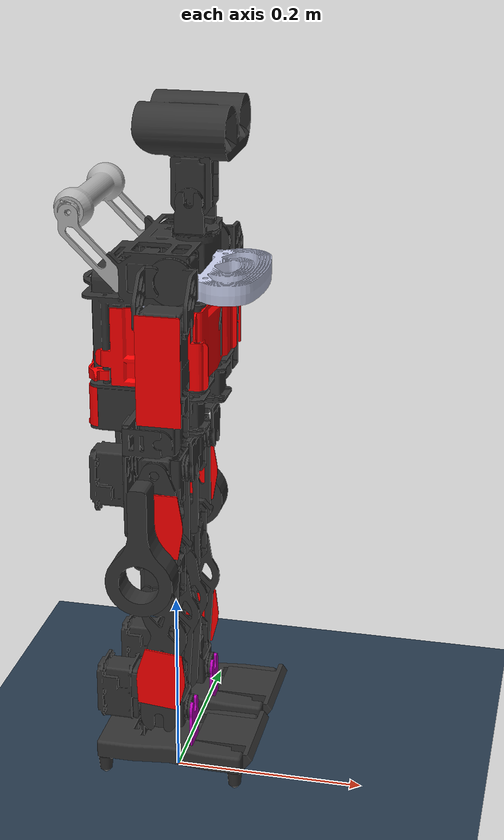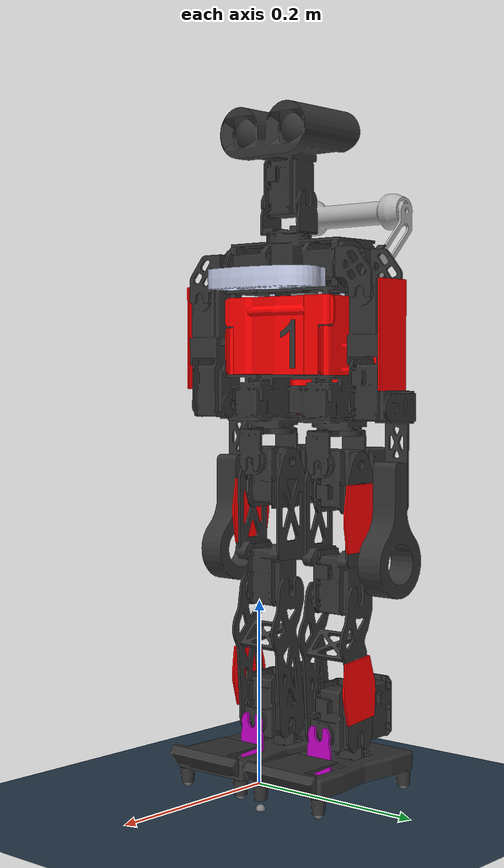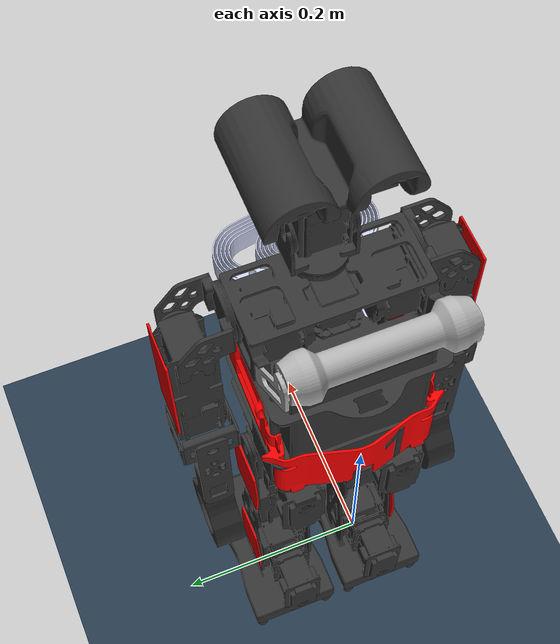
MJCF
<mujoco model="SAHR_v76">

    <compiler angle="radian" meshdir="../meshes/" />
    <size njmax="500" nconmax="1000" />
    <asset>
        <mesh name="trunk_1" file="trunk_1.STL" />
        <mesh name="u_neck_1" file="u_neck_1.STL" />
        <mesh name="head_1" file="head_1.STL" />
        <mesh name="Head_Up" file="Head_Up.STL" />
        <mesh name="u_neck_bone_right" file="u_neck_bone_right.STL" />
        <mesh name="u_neck_bone_left" file="u_neck_bone_left.STL" />
        <mesh name="u_block_2" file="u_block_2.STL" />
        <mesh name="u_block_2_bone1" file="u_block_2_bone1.STL" />
        <mesh name="u_block_2_bone2" file="u_block_2_bone2.STL" />
        <mesh name="mx106_block_2" file="mx106_block_2.STL" />
        <mesh name="left_knee_1" file="left_knee_1.STL" />
        <mesh name="tibia_2" file="tibia_2.STL" />
        <mesh name="mx106_block_mir_2" file="mx106_block_mir_2.STL" />
        <mesh name="left_foot_1" file="left_foot_1.STL" />
        <mesh name="left_foot_1_0_foot_protection" file="left_foot_1_0_foot_protection.STL" />
        <mesh name="left_foot_cleat_front_right" file="left_foot_cleat_front_right.STL" />
        <mesh name="left_foot_cleat_front_left" file="left_foot_cleat_front_left.STL" />
        <mesh name="left_foot_cleat_back_right" file="left_foot_cleat_back_right.STL" />
        <mesh name="left_foot_cleat_back_left" file="left_foot_cleat_back_left.STL" />
        <mesh name="left_foot_bone_back" file="left_foot_bone_back.STL" />
        <mesh name="left_foot_bone_front" file="left_foot_bone_front.STL" />
        <mesh name="joint_block03" file="joint_block03.STL" />
        <mesh name="dubel03" file="dubel03.STL" />
        <mesh name="tibia_21" file="tibia_21.STL" />
        <mesh name="left_shin_panel" file="left_shin_panel.STL" />
        <mesh name="tibia_22" file="tibia_22.STL" />
        <mesh name="left_knee_bone_1" file="left_knee_bone_1.STL" />
        <mesh name="left_hip_panel" file="left_hip_panel.STL" />
        <mesh name="left_knee_bone_2" file="left_knee_bone_2.STL" />
        <mesh name="joint_block01" file="joint_block01.STL" />
        <mesh name="dubel01" file="dubel01.STL" />
        <mesh name="u_block_1" file="u_block_1.STL" />
        <mesh name="u_block_1_bone1" file="u_block_1_bone1.STL" />
        <mesh name="u_block_1_bone2" file="u_block_1_bone2.STL" />
        <mesh name="mx106_block_mir_1" file="mx106_block_mir_1.STL" />
        <mesh name="right_knee_1" file="right_knee_1.STL" />
        <mesh name="tibia_1" file="tibia_1.STL" />
        <mesh name="mx106_block_1" file="mx106_block_1.STL" />
        <mesh name="right_foot_1" file="right_foot_1.STL" />
        <mesh name="right_foot_cleat_front_left" file="right_foot_clear_front_left.STL" />
        <mesh name="right_foot_cleat_back_left" file="right_foot_cleat_back_left.STL" />
        <mesh name="right_foot_cleat_back_right" file="right_foot_cleat_back_right.STL" />
        <mesh name="right_foot_cleat_front_right" file="right_foot_cleat_front_right.STL" />
        <mesh name="right_foot_1_7_foot_protection" file="right_foot_1_7_foot_protection.STL" />
        <mesh name="right_foot_bone_back" file="right_foot_bone_back.STL" />
        <mesh name="right_foot_bone_front" file="right_foot_bone_front.STL" />
        <mesh name="joint_block04" file="joint_block04.STL" />
        <mesh name="dubel04" file="dubel04.STL" />
        <mesh name="tibia_11" file="tibia_11.STL" />
        <mesh name="right_shine_panel" file="right_shine_panel.STL" />
        <mesh name="tibia_12" file="tibia_12.STL" />
        <mesh name="right_knee_bone_1" file="right_knee_bone_1.STL" />
        <mesh name="right_hip_panel" file="right_hip_panel.STL" />
        <mesh name="right_knee_bone_2" file="right_knee_bone_2.STL" />
        <mesh name="joint_block02" file="joint_block02.STL" />
        <mesh name="dubel02" file="dubel02.STL" />
        <mesh name="u_shoulder_1" file="u_shoulder_1.STL" />
        <mesh name="left_humerus_1" file="left_humerus_1.STL" />
        <mesh name="left_radius_1" file="left_radius_1.STL" />
        <mesh name="left_radius_1_1_radius_plate" file="left_radius_1_1_radius_plate.STL" />
        <mesh name="left_boxing_glove" file="left_boxing_glove.STL" />
        <mesh name="left_radius_bone1" file="left_radius_bone1.STL" />
        <mesh name="left_radius_bone2" file="left_radius_bone2.STL" />
        <mesh name="left_humerus_panel" file="left_humerus_panel.STL" />
        <mesh name="u_shoulder_1_bone_front" file="u_shoulder_1_bone_front.STL" />
        <mesh name="u_shoulder_1_bone_back" file="u_shoulder_1_bone_back.STL" />
        <mesh name="u_shoulder_2" file="u_shoulder_2.STL" />
        <mesh name="right_humerus_1" file="right_humerus_1.STL" />
        <mesh name="right_radius_1" file="right_radius_1.STL" />
        <mesh name="right_radius_1_0_radius_plate" file="right_radius_1_0_radius_plate.STL" />
        <mesh name="right_boxing_glove" file="right_boxing_glove.STL" />
        <mesh name="right_radius_bone1" file="right_radius_bone1.STL" />
        <mesh name="right_radius_bone2" file="right_radius_bone2.STL" />
        <mesh name="right_humerus_panel" file="right_humerus_panel.STL" />
        <mesh name="u_shoulder_2_bone_front" file="u_shoulder_2_bone_front.STL" />
        <mesh name="u_shoulder_2_bone_back" file="u_shoulder_2_bone_back.STL" />
        <mesh name="Front_dempher" file="Front_dempher.STL" />
        <mesh name="Handle" file="Handle.STL" />
        <mesh name="DXL_Board" file="DXL_Board.STL" />
        <mesh name="cover_battery" file="cover_battery.STL" />
        <mesh name="front_panel" file="front_panel.STL" />
        <mesh name="left_panel" file="left_panel.STL" />
        <mesh name="right_panel" file="right_panel.STL" />
        <mesh name="num_01" file="num_01.STL" />
        <mesh name="number_01" file="number_01.STL" />
    </asset>

    <asset>
        <texture type="skybox" builtin="gradient" rgb1="0.3 0.5 0.7" rgb2="0 0 0" width="512" height="512"/>

        <texture name="texplane" type="2d" builtin="checker" rgb1=".2 .3 .4" rgb2=".1 0.15 0.2" width="512" height="512" mark="cross" markrgb=".8 .8 .8"/>

        <texture name="texgeom" type="cube" builtin="flat" mark="cross" width="127" height="1278"
            rgb1="0.8 0.6 0.4" rgb2="0.8 0.6 0.4" markrgb="1 1 1" random="0.01"/>

        <material name="matplane" reflectance="0.3" texture="texplane" texrepeat="1 1" texuniform="true"/>

        <material name="matgeom" texture="texgeom" texuniform="true" rgba="0.8 0.6 .4 1"/>
    </asset>

    <worldbody>
        <geom name="floor" pos="0 0 0" size="0 0 .25" type="plane" material="matplane" condim="3"/>

        <light directional="false" diffuse=".2 .2 .2" specular="0 0 0" pos="0 0 5" dir="0 0 -1" castshadow="false"/>
        <light mode="targetbodycom" target="trunk_1" directional="false" diffuse=".8 .8 .8" specular="0.3 0.3 0.3" pos="0 0 4.0" dir="0 0 -1"/>
        <camera name="back" pos="-1 0 1" xyaxes="0 -1 0 1 0 2" mode="trackcom"/>
        <camera name="side" pos="0 -1 1" xyaxes="1 0 0 0 1 2" mode="trackcom"/>
        <body name="base" pos="0 0 0.4">
            <body name="trunk_1" pos="0 0 0" quat="0.707 0 0 0.707">
                <freejoint name="root"/>
                <geom type="mesh" rgba="0.2 0.2 0.2 1" mesh="trunk_1" />
                <geom pos="0.0506584 -0.0242583 0.141" quat="7.81699e-07 0 0 1" type="mesh" rgba="0.79216 0.81961 0.93333 1" mesh="Front_dempher" />
                <geom pos="0.119659 0.0956219 0.215878" quat="0.706998 0.0123898 -0.706998 -0.0123898" type="mesh" rgba="0.698039 0.698039 0.698039 1" mesh="Handle" />
                <body name="dxl_board" pos="0.0506584 0.0131858 0.123" quat="0.5 -0.5 -0.5 0.5">
                    <geom type="mesh" rgba="0.79216 0.81961 0.93333 1" mesh="DXL_Board" />
                    <site name="dxl_board_accelerometer" pos="0 0 0" size=".01 .01 .01" type="box" />
                    <site name="dxl_board_gyro" pos="0 0 0" size=".01 .01 .01" type="box" />

                </body>
                <geom pos="-0.0143415 0.0637418 0" quat="5.52744e-07 5.52744e-07 0.707107 0.707107" type="mesh" rgba="1 0 0 1" mesh="cover_battery" />
                <geom pos="0.0506584 -0.0332583 0.0435" quat="7.81699e-07 0 0 1" type="mesh" rgba="1 0 0 1" mesh="front_panel" />
                <geom pos="0.114644 0.0177528 0.043" quat="0.0110329 0 0 0.999939" type="mesh" rgba="1 0 0 1" mesh="left_panel" />
                <geom pos="-0.0133262 0.0177312 0.043" quat="0.999943 0 0 0.0107024" type="mesh" rgba="1 0 0 1" mesh="right_panel" />
                <geom pos="0.0505128 -0.0332711 0.0497542" quat="0.706434 0.706434 0.030843 0.030843" type="mesh" rgba="0.2 0.2 0.2 1" mesh="num_01" />
                <geom pos="0.0393193 0.0941906 0.0028542" quat="0.098054 0.098054 -0.700275 -0.700275" type="mesh" rgba="0.2 0.2 0.2 1" mesh="number_01" />
                <body name="u_neck_1" pos="0.0506584 -0.0113378 0.184196">
                    <inertial pos="-1.33133e-10 -4.74719e-09 0.0119379" quat="0.5 0.5 0.5 0.5" mass="0.0278443" diaginertia="1.38353e-05 1.36173e-05 5.7683e-06" />

                    <geom type="mesh" rgba="0.2 0.2 0.2 1" mesh="u_neck_1" />
                    <geom pos="-0.0265 0.000100041 0.0352043" quat="0.5 0.5 0.5 -0.5" type="mesh" rgba="0.2 0.2 0.2 1" mesh="u_neck_bone_right" />
                    <geom pos="0.0235 9.99633e-05 0.0352043" quat="0.5 0.5 0.5 -0.5" type="mesh" rgba="0.2 0.2 0.2 1" mesh="u_neck_bone_left" />
                    <body name="head_1" pos="0 7.94737e-05 0.0357043" quat="0.5 -0.5 0.5 -0.5">
                        <inertial pos="0.00291592 -0.0507699 -5.97662e-05" quat="0.706849 0.706842 0.0187562 0.019667" mass="0.45205" diaginertia="0.000508663 0.000438253 0.000251688" />

                        <geom type="mesh" rgba="0.2 0.2 0.2 1" mesh="head_1" />
                        <geom pos="-0.0133327 -0.0476 -0.017" quat="0 0.707107 0 0.707106" type="mesh" rgba="0.2 0.2 0.2 1" mesh="Head_Up" />
                    </body>
                </body>
                <body name="u_block_2" pos="0.0970334 0.0146146 -0.0089" quat="0 0.706488 -0.707725 0">
                    <inertial pos="0.00599173 -1.00908e-05 0.0136137" quat="0.000505477 0.678064 -0.000806897 0.735002" mass="0.0269256" diaginertia="1.67297e-05 1.61336e-05 6.9952e-06" />

                    <joint name="left_hip_yaw" type="hinge" pos="0 0 0" axis="0 0 -1"  damping="0.5" stiffness="20" frictionloss="5"  limited="true" range = "-0.5 1.5"/>

                    <geom type="mesh" rgba="0.2 0.2 0.2 1" mesh="u_block_2" />
                    <geom pos="0.0329179 -5.7535e-05 0.037" quat="0.5 0.5 0.5 -0.5" type="mesh" rgba="0.2 0.2 0.2 1" mesh="u_block_2_bone1" />
                    <geom pos="-0.023385 4.08729e-05 0.037" quat="0.5 0.5 0.5 -0.5" type="mesh" rgba="0.2 0.2 0.2 1" mesh="u_block_2_bone2" />
                    <body name="mx106_block_2" pos="0 0 0.04" quat="0.5 -0.5 -0.5 0.5">
                        <inertial pos="5.15734e-05 -0.0158297 0.0220983" quat="1 0 0 0" mass="0.356029" diaginertia="0.000366976 0.000311782 0.000150052" />

                        <joint name="left_hip_roll" type="hinge" pos="0 0 0" axis="0 0 -1" damping="0.5" stiffness="20" frictionloss="5"  limited="true" range="-0.7 1.0"/>

                        <geom type="mesh" rgba="0.2 0.2 0.2 1" mesh="mx106_block_2" />
                        <geom pos="0 0 0.014722" quat="0.5 -0.5 0.5 -0.5" type="mesh" rgba="0.2 0.2 0.2 1" mesh="joint_block01" />
                        <geom pos="-1.36016e-08 0 0.023422" quat="1 -9.16352e-09 -7.81699e-07 7.45057e-09" type="mesh" rgba="0.2 0.2 0.2 1" mesh="dubel01" />
                        <body name="left_knee_1" pos="0 0 0" quat="0.707107 0 0.707107 0">
                            <inertial pos="-2.19976e-05 -0.108796 -0.000922573" quat="0.725498 0.688224 0 0" mass="0.229478" diaginertia="0.000327608 0.000293228 8.86064e-05" />

                            <joint name="left_hip_pitch" type="hinge" pos="0 0 0" axis="0 0 -1" damping="0.5" stiffness="20" frictionloss="5"  limited="true" range="-2.1 1.0"/>

                            <geom type="mesh" rgba="0.2 0.2 0.2 1" mesh="left_knee_1" />
                            <geom pos="-2.19531e-05 -0.055 -0.03" quat="0 0 1 0" type="mesh" rgba="0.2 0.2 0.2 1" mesh="left_knee_bone_1" />
                            <geom pos="-2.19531e-05 -0.055 -0.03" quat="0 0 1 0" type="mesh" rgba="1 0 0 1" mesh="left_hip_panel" />
                            <geom pos="-2.20407e-05 -0.128 0.026" quat="0.5 -0.5 -0.5 0.5" type="mesh" rgba="0.2 0.2 0.2 1" mesh="left_knee_bone_2" />
                            <body name="tibia_2" pos="-2.19547e-05 -0.141 -0.029" quat="0 1 0 0">
                                <inertial pos="0.00453397 0.0676196 -0.026272" quat="0.686939 0.726604 0.00837443 0.00951759" mass="0.0696482" diaginertia="0.000177805 0.000141467 5.69954e-05" />

                                <joint name="left_knee" type="hinge" pos="0 0 0" axis="0 0 1" damping="0.5" stiffness="20" frictionloss="5"  limited="true" range="0.0 1.7"/>

                                <geom type="mesh" rgba="0.2 0.2 0.2 1" mesh="tibia_2" />
                                <geom pos="-0.00141422 0.0350503 -0.003" quat="0 1 0 0" type="mesh" rgba="0.2 0.2 0.2 1" mesh="tibia_21" />
                                <geom pos="0.00350175 0.0920354 0.001" quat="-0.0494213 0 0 0.998778" type="mesh" rgba="1 0 0 1" mesh="left_shin_panel" />
                                <geom pos="0.0219202 0.0583848 -0.055" quat="0 0 0 1" type="mesh" rgba="0.2 0.2 0.2 1" mesh="tibia_22" />
                                <body name="mx106_block_mir_2" pos="0 0.14 0" quat="0 1 0 0">
                                    <inertial pos="-0.0220763 0.0158297 0.0290516" quat="0.00915433 0.705801 -0.0327047 0.707595" mass="0.356029" diaginertia="0.000366976 0.000311782 0.000150052" />

                                    <joint name="left_ankle_pitch" type="hinge" pos="0 0 0" axis="0 0 -1" damping="0.5" stiffness="20" frictionloss="5"  limited="true" range="-0.8 1.0"/>

                                    <geom type="mesh" rgba="0.2 0.2 0.2 1" mesh="mx106_block_mir_2" />
                                    <geom pos="0 0 0.00949997" quat="0.707107 0 0 0.707107" type="mesh" rgba="0.2 0.2 0.2 1" mesh="joint_block03" />
                                    <geom pos="0 0 0.00889992" quat="0 0.707107 0 0.707107" type="mesh" rgba="0.2 0.2 0.2 1" mesh="dubel03" />
                                    <body name="left_foot_1" pos="0.00827101 0 0.029" quat="7.45058e-09 0.707107 7.45058e-09 -0.707107">
                                        <inertial pos="0.00414743 0.0304994 -0.0352501" quat="0.695396 -0.0257124 0.026305 0.71768" mass="0.473901" diaginertia="0.00130021 0.00119674 0.000218674" />

                                        <geom type="mesh" rgba="0.2 0.2 0.2 1" mesh="left_foot_1" />
                                        <geom pos="0.0055 0.04 -0.0858033" quat="0.690665 0.723162 0.00340654 0.00263633" type="mesh" rgba="0.2 0.2 0.2 1" mesh="left_foot_1_0_foot_protection" />

                                        <geom pos="-0.0325 0.06 -0.0778033" quat="0 0 0 1" type="mesh" rgba="0.2 0.2 0.2 1" mesh="left_foot_cleat_front_right" />
                                        <site name="left_foot_cleat_front_right" pos="-0.0325 0.07 -0.0778033" quat="0 0 0 1" />

                                        <geom pos="0.0435 0.06 -0.0778033" quat="0 0 0 1" type="mesh" rgba="0.2 0.2 0.2 1" mesh="left_foot_cleat_front_left" />
                                        <site name="left_foot_cleat_front_left" pos="0.0435 0.06 -0.0778033" quat="0 0 0 1" />

                                        <geom pos="-0.0325 0.06 0.0638054" quat="0 1 0 0" type="mesh" rgba="0.2 0.2 0.2 1" mesh="left_foot_cleat_back_right" />
                                        <site name="left_foot_cleat_back_right" pos="-0.0325 0.06 0.0638054" quat="0 1 0 0" />

                                        <geom pos="0.0435 0.06 0.0638054" quat="0 1 0 0" type="mesh" rgba="0.2 0.2 0.2 1" mesh="left_foot_cleat_back_left" />
                                        <site name="left_foot_cleat_back_left" pos="0.0435 0.06 0.0638054" quat="0 1 0 0" />

                                        <geom pos="0 0 0.0328961" quat="0.5 -0.5 -0.5 0.5" type="mesh" rgba="0.2 0.2 0.2 1" mesh="left_foot_bone_back" />
                                        <geom pos="0 0 -0.0234439" quat="0.499999 -0.500001 -0.500001 0.499999" type="mesh" rgba="0.752941 0 0.752941 1" mesh="left_foot_bone_front" />
                                    </body>
                                </body>
                            </body>
                        </body>
                    </body>
                </body>
                <body name="u_block_1" pos="0.00428344 0.0146147 -0.0089" quat="0 0.707107 -0.707107 0">
                    <inertial pos="0.00599174 2.69365e-09 0.0136137" quat="0 0.678064 0 0.735003" mass="0.0269256" diaginertia="1.67297e-05 1.61336e-05 6.99521e-06" />

                    <joint name="right_hip_yaw" type="hinge" pos="0 0 0" axis="0 0 -1" damping="0.5" stiffness="20" frictionloss="5" limited="true" range = "-0.5 1.5"/>

                    <geom type="mesh" rgba="0.2 0.2 0.2 1" mesh="u_block_1" />
                    <geom pos="0.032918 0 0.037" quat="0.5 0.5 0.5 -0.5" type="mesh" rgba="0.2 0.2 0.2 1" mesh="u_block_1_bone1" />
                    <geom pos="-0.023385 0 0.037" quat="0.5 0.5 0.5 -0.5" type="mesh" rgba="0.2 0.2 0.2 1" mesh="u_block_1_bone2" />
                    <body name="mx106_block_mir_1" pos="0 0 0.04" quat="0.5 -0.5 0.5 -0.5">
                        <inertial pos="5.15746e-05 -0.0158297 -0.0220983" quat="0.999422 -0.0295988 0.00126868 0.0166526" mass="0.356029" diaginertia="0.000366976 0.000311782 0.000150052" />

                        <joint name="right_hip_roll" type="hinge" pos="0 0 0" axis="0 0 1" damping="0.5" stiffness="20" frictionloss="5"  limited ='true' range="-0.7 1.0"/>

                        <geom type="mesh" rgba="0.2 0.2 0.2 1" mesh="mx106_block_mir_1" />
                        <geom pos="-0.017 -0.0145 -0.016722" quat="0.5 0.5 -0.5 -0.5" type="mesh" rgba="0.2 0.2 0.2 1" mesh="joint_block02" />
                        <geom pos="-0.015 -0.015 -0.032422" type="mesh" rgba="0.2 0.2 0.2 1" mesh="dubel02" />
                        <body name="right_knee_1" pos="-0.029 0 -2.2e-05" quat="0.707107 0 0.707107 0">
                            <inertial pos="6.56694e-10 -0.108796 0.0280774" quat="0.725498 0.688224 0 0" mass="0.229478" diaginertia="0.000327608 0.000293228 8.86064e-05" />

                            <joint name="right_hip_pitch" type="hinge" pos="0 0 0" axis="0 0 1" damping="0.5" stiffness="20" frictionloss="5"  limited="true" range="-2.1 1.0"/>

                            <geom type="mesh" rgba="0.2 0.2 0.2 1" mesh="right_knee_1" />
                            <geom pos="-2.2e-05 -0.128 0.003" quat="0.5 0.5 0.5 0.5" type="mesh" rgba="0.2 0.2 0.2 1" mesh="right_knee_bone_1" />
                            <geom pos="0 -0.055 -0.001" quat="-7.81699e-07 0 1 0" type="mesh" rgba="1 0 0 1" mesh="right_hip_panel" />
                   f         <geom pos="-2.2e-05 -0.128 0.058" quat="0.5 0.5 0.5 0.5" type="mesh" rgba="0.2 0.2 0.2 1" mesh="right_knee_bone_2" />
                            <body name="tibia_1" pos="0 -0.141 0.055" quat="0 0 0 1">
                                <inertial pos="0.00453401 0.0676196 -0.028728" quat="0.726604 0.686939 0.00951817 0.00837388" mass="0.0696482" diaginertia="0.000177805 0.000141467 5.69954e-05" />

                                <joint name="right_knee" type="hinge" pos="0 0 0" axis="0 0 1" damping="0.5" stiffness="20" frictionloss="5"  limited="true" range="0.0 1.7"/>

                                <geom type="mesh" rgba="0.2 0.2 0.2 1" mesh="tibia_1" />
                                <geom pos="-0.00169887 0.0350365 -0.052" quat="0.707106 0 -0.707107 0" type="mesh" rgba="0.2 0.2 0.2 1" mesh="tibia_11" />
                                <geom pos="0.00350176 0.0920354 -0.056" quat="-3.8633e-08 -0.998778 -0.0494213 -7.80752e-07" type="mesh" rgba="1 0 0 1" mesh="right_shine_panel" />
                                <geom pos="0.0219203 0.0583848 0" quat="0.497808 -0.497808 -0.502183 0.502183" type="mesh" rgba="0.2 0.2 0.2 1" mesh="tibia_12" />
                                <body name="mx106_block_1" pos="0 0.14 -0.026" quat="0 0 0 -1">
                                    <inertial pos="0.0220763 0.0158297 5.15964e-05" quat="-0.0327051 0.707596 0.00915386 0.705801" mass="0.356029" diaginertia="0.000366976 0.000311782 0.000150052" />

                                    <joint name="right_ankle_pitch" type="hinge" pos="0 0 0" axis="0 0 1" damping="0.5" stiffness="20" frictionloss="5" limited="true" range="-0.8 1.0"/>

                                    <geom type="mesh" rgba="0.2 0.2 0.2 1" mesh="mx106_block_1" />
                                    <geom pos="0 0 -0.0195" quat="0.707107 0 0 0.707107" type="mesh" rgba="0.2 0.2 0.2 1" mesh="joint_block04" />
                                    <geom pos="0.0344 0.045 0" quat="0.707107 4.80107e-09 0.707107 -4.80107e-09" type="mesh" rgba="0.2 0.2 0.2 1" mesh="dubel04" />
                                    <body name="right_foot_1" pos="-0.00630123 0 0" quat="0.707107 7.41763e-08 0.707107 -6.66368e-08">
                                        <inertial pos="0.0062165 -0.0304994 -0.0372199" quat="0.708542 0.0138007 -0.0382562 0.704496" mass="0.473901" diaginertia="0.00130073 0.00119802 0.000218113" />

                                        <geom type="mesh" rgba="0.2 0.2 0.2 1" mesh="right_foot_1" />

                                        <geom pos="-0.0325 -0.06 -0.0797731" type="mesh" rgba="0.2 0.2 0.2 1" mesh="right_foot_cleat_front_left" />
                                        <site name="right_foot_cleat_front_left" pos="-0.0325 -0.06 -0.0797731" />

                                        <geom pos="-0.0325 -0.06 0.0618356" quat="0 0 1 0" type="mesh" rgba="0.2 0.2 0.2 1" mesh="right_foot_cleat_back_left" />
                                        <site name="right_foot_cleat_back_left" pos="-0.0325 -0.06 0.0618356" quat="0 0 1 0" />

                                        <geom pos="0.0435 -0.06 0.0618356" quat="0 0 1 0" type="mesh" rgba="0.2 0.2 0.2 1" mesh="right_foot_cleat_back_right" />
                                        <site name="right_foot_cleat_back_right" pos="0.0435 -0.06 0.0618356" quat="0 0 1 0" />

                                        <geom pos="0.0435 -0.06 -0.0797731" type="mesh" rgba="0.2 0.2 0.2 1" mesh="right_foot_cleat_front_right" />
                                        <site name="right_foot_cleat_front_right" pos="0.0435 -0.06 -0.0797731" />

                                        <geom pos="0.0055 -0.04 -0.0877731" quat="0 0 0.707107 0.707107" type="mesh" rgba="0.2 0.2 0.2 1" mesh="right_foot_1_7_foot_protection" />
                                        <geom pos="0.00949975 0 0.0075043" quat="0.5 -0.5 0.5 -0.5" type="mesh" rgba="0.2 0.2 0.2 1" mesh="right_foot_bone_back" />
                                        <geom pos="0 0 -0.0254357" quat="0.499999 -0.500001 0.500001 -0.499999" type="mesh" rgba="0.752941 0 0.752941 1" mesh="right_foot_bone_front" />
                                    </body>
                                </body>
                            </body>
                        </body>
                    </body>
                </body>
                <body name="u_shoulder_1" pos="0.123658 -0.00625845 0.155" quat="0.5 -0.5 0.5 -0.5">
                    <inertial pos="1.24137e-08 0.00176186 0.00794026" quat="-0.189311 0.681294 -0.189311 0.681293" mass="0.0640106" diaginertia="3.03725e-05 2.32131e-05 1.81561e-05" />

                    <geom type="mesh" rgba="0.2 0.2 0.2 1" mesh="u_shoulder_1" />
                    <geom pos="0.0235 0 0.000500095" quat="0.5 0.5 -0.5 -0.5" type="mesh" rgba="0.2 0.2 0.2 1" mesh="u_shoulder_1_bone_front" />
                    <geom pos="-0.0265 0 0.000500173" quat="0.5 0.5 -0.5 -0.5" type="mesh" rgba="0.2 0.2 0.2 1" mesh="u_shoulder_1_bone_back" />
                    <body name="left_humerus_1" pos="0.0103499 0.03 0.0355001" quat="0 -0.707106 0 0.707107">
                        <inertial pos="-0.000429571 -0.0568917 0.0102473" quat="0.502436 0.492044 -0.488579 0.51647" mass="0.323776" diaginertia="0.000127873 0.000125577 8.32034e-05" />

                        <geom type="mesh" rgba="0.2 0.2 0.2 1" mesh="left_humerus_1" />
                        <geom pos="-0.021 -0.0425 0.00994983" quat="0.707107 0 0.707107 0" type="mesh" rgba="1 0 0 1" mesh="left_humerus_panel" />
                        <body name="left_radius_1" pos="-0.0255 -0.1145 0.00994983" quat="0 0.707107 0 0.707106">
                            <inertial pos="0.0276835 0.0905651 0.0255" quat="0.495657 0.504305 -0.495657 0.504305" mass="0.0838657" diaginertia="0.00039104 0.000384205 3.00183e-05" />

                            <geom type="mesh" rgba="0.2 0.2 0.2 1" mesh="left_radius_1" />
                            <geom pos="0.0260001 0.1589 0.0395" quat="0 0 0 1" type="mesh" rgba="0.2 0.2 0.2 1" mesh="left_radius_1_1_radius_plate" />
                            <body name="left_boxing_glove">
                            <geom pos="0.0260001 0.1589 0.0255" quat="0 0 0 1" type="mesh" rgba="0.2 0.2 0.2 1" mesh="left_boxing_glove" />
                            </body>
                            <geom pos="0.036 0 0.00199994" quat="0.5 0.5 0.5 -0.5" type="mesh" rgba="0.2 0.2 0.2 1" mesh="left_radius_bone1" />
                            <geom pos="0.0360001 0 0.0489999" quat="0.5 0.5 0.5 -0.5" type="mesh" rgba="0.2 0.2 0.2 1" mesh="left_radius_bone2" />
                        </body>
                    </body>
                </body>
                <body name="u_shoulder_2" pos="-0.0223415 -0.00625822 0.155" quat="0.5 0.5 0.5 0.5">
                    <inertial pos="0 -0.00176186 -0.00794026" quat="-0.189311 0.681294 -0.189311 0.681294" mass="0.0640106" diaginertia="3.03725e-05 2.32131e-05 1.81561e-05" />

                    <geom type="mesh" rgba="0.2 0.2 0.2 1" mesh="u_shoulder_2" />
                    <geom pos="-0.0265 0 -0.000500134" quat="0.5 -0.5 -0.5 0.5" type="mesh" rgba="0.2 0.2 0.2 1" mesh="u_shoulder_2_bone_front" />
                    <geom pos="0.0235 0 -0.000500134" quat="0.5 -0.5 -0.5 0.5" type="mesh" rgba="0.2 0.2 0.2 1" mesh="u_shoulder_2_bone_back" />
                    <body name="right_humerus_1" pos="0.00911335 -0.03 -0.0355001" quat="0.707107 0 -0.707106 0">
                        <inertial pos="-0.000429583 -0.0568917 0.00899464" quat="0.485314 0.512881 -0.505864 0.495505" mass="0.323776" diaginertia="0.000127871 0.000125577 8.32044e-05" />

                        <geom type="mesh" rgba="0.2 0.2 0.2 1" mesh="right_humerus_1" />
                        <geom pos="-0.021 -0.0425 0.00911332" quat="0.707107 0 0.707107 0" type="mesh" rgba="1 0 0 1" mesh="right_humerus_panel" />
                        <body name="right_radius_1" pos="-0.0140206 -0.1145 0.00911333" quat="1.56919e-10 -0.707107 1.56919e-10 0.707106">
                            <inertial pos="0.0276834 0.0906275 -0.0140206" quat="0.495656 0.504306 -0.495656 0.504306" mass="0.0838657" diaginertia="0.000391496 0.000384661 3.00182e-05" />

                            <geom type="mesh" rgba="0.2 0.2 0.2 1" mesh="right_radius_1" />
                            <geom pos="0.026 0.159 -0.0280206" quat="0.707107 0 0 -0.707107" type="mesh" rgba="0.2 0.2 0.2 1" mesh="right_radius_1_0_radius_plate" />
                            <body name="right_boxing_glove">
                            <geom pos="0.026 0.159 -0.0140206" quat="0 0 0 -1" type="mesh" rgba="0.2 0.2 0.2 1" mesh="right_boxing_glove" />
                            </body>
                            <geom pos="0.036 0 0.00947939" quat="0.5 0.5 0.5 -0.5" type="mesh" rgba="0.2 0.2 0.2 1" mesh="right_radius_bone1" />
                            <geom pos="0.036 0 -0.0375206" quat="0.5 0.5 0.5 -0.5" type="mesh" rgba="0.2 0.2 0.2 1" mesh="right_radius_bone2" />
                        </body>
                    </body>
                </body>
            </body>
        </body>
    </worldbody>

    <sensor>
    <framepos name="trunk_position" objtype="body" objname="trunk_1"/>
    <framequat name="trunk_quaternion" objtype="body" objname="trunk_1"/>
    <gyro name="imu/gyro" site="dxl_board_gyro" />
    <accelerometer name="imu/accelerometer" site="dxl_board_accelerometer" />

    <touch name="left_pressure/pressure_0" site="left_foot_cleat_front_right" />
    <touch name="left_pressure/pressure_1" site="left_foot_cleat_back_right" />
    <touch name="left_pressure/pressure_2" site="left_foot_cleat_back_left" />
    <touch name="left_pressure/pressure_3" site="left_foot_cleat_front_left" />

    <touch name="right_pressure/pressure_0" site="right_foot_cleat_front_right" />
    <touch name="right_pressure/pressure_1" site="right_foot_cleat_back_right" />
    <touch name="right_pressure/pressure_2" site="right_foot_cleat_back_left" />
    <touch name="right_pressure/pressure_3" site="right_foot_cleat_front_left" />

    <jointpos name="head_yaw/position" joint="head_yaw" />
    <jointpos name="head_pitch/position" joint="head_pitch" />
    <jointpos name="right_shoulder_pitch/position" joint="right_shoulder_pitch" />
    <jointpos name="right_shoulder_roll/position" joint="right_shoulder_roll" />
    <jointpos name="left_shoulder_pitch/position" joint="left_shoulder_pitch" />
    <jointpos name="left_shoulder_roll/position" joint="left_shoulder_roll" />
    <jointpos name="right_elbow/position" joint="right_elbow" />
    <jointpos name="left_elbow/position" joint="left_elbow" />
    <jointpos name="right_hip_pitch/position" joint="right_hip_pitch" />
    <jointpos name="right_hip_roll/position" joint="right_hip_roll" />
    <jointpos name="right_hip_yaw/position" joint="right_hip_yaw" />
    <jointpos name="left_hip_pitch/position" joint="left_hip_pitch" />
    <jointpos name="left_hip_roll/position" joint="left_hip_roll" />
    <jointpos name="left_hip_yaw/position" joint="left_hip_yaw" />
    <jointpos name="right_knee/position" joint="right_knee" />
    <jointpos name="left_knee/position" joint="left_knee" />
    <jointpos name="left_ankle_pitch/position" joint="left_ankle_pitch" />
    <jointpos name="left_ankle_roll/position" joint="left_ankle_roll" />
    <jointpos name="right_ankle_pitch/position" joint="right_ankle_pitch" />
    <jointpos name="right_ankle_roll/position" joint="right_ankle_roll" />

    <jointvel name="head_yaw/velocity" joint="head_yaw" />
    <jointvel name="head_pitch/velocity" joint="head_pitch" />
    <jointvel name="right_shoulder_pitch/velocity" joint="right_shoulder_pitch" />
    <jointvel name="right_shoulder_roll/velocity" joint="right_shoulder_roll" />
    <jointvel name="left_shoulder_pitch/velocity" joint="left_shoulder_pitch" />
    <jointvel name="left_shoulder_roll/velocity" joint="left_shoulder_roll" />
    <jointvel name="right_elbow/velocity" joint="right_elbow" />
    <jointvel name="left_elbow/velocity" joint="left_elbow" />
    <jointvel name="right_hip_pitch/velocity" joint="right_hip_pitch" />
    <jointvel name="right_hip_roll/velocity" joint="right_hip_roll" />
    <jointvel name="right_hip_yaw/velocity" joint="right_hip_yaw" />
    <jointvel name="left_hip_pitch/velocity" joint="left_hip_pitch" />
    <jointvel name="left_hip_roll/velocity" joint="left_hip_roll" />
    <jointvel name="left_hip_yaw/velocity" joint="left_hip_yaw" />
    <jointvel name="right_knee/velocity" joint="right_knee" />
    <jointvel name="left_knee/velocity" joint="left_knee" />
    <jointvel name="left_ankle_pitch/velocity" joint="left_ankle_pitch" />
    <jointvel name="left_ankle_roll/velocity" joint="left_ankle_roll" />
    <jointvel name="right_ankle_pitch/velocity" joint="right_ankle_pitch" />
    <jointvel name="right_ankle_roll/velocity" joint="right_ankle_roll" />

    </sensor>
</mujoco>
